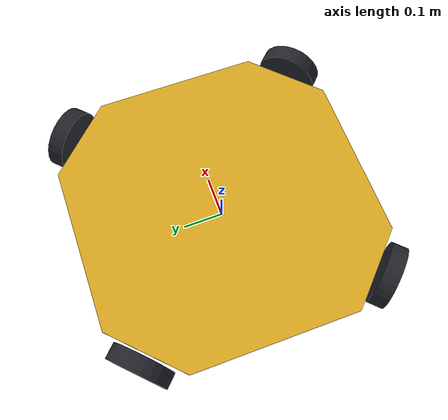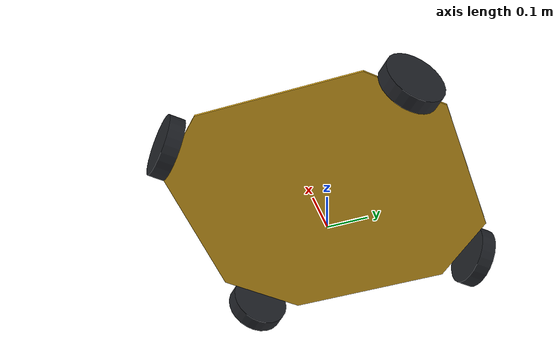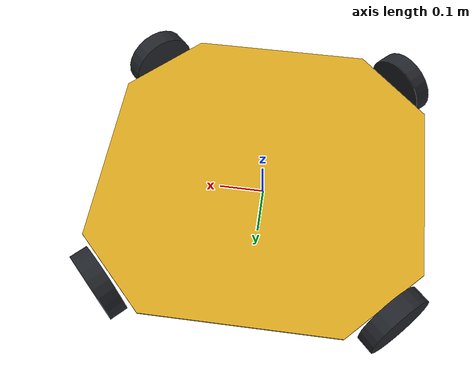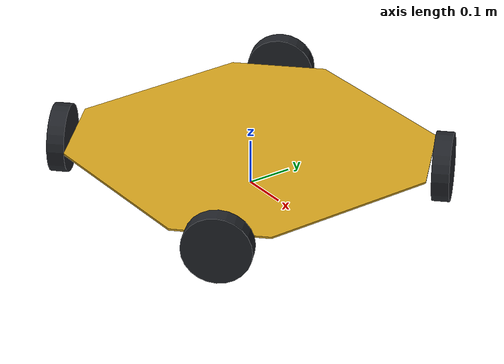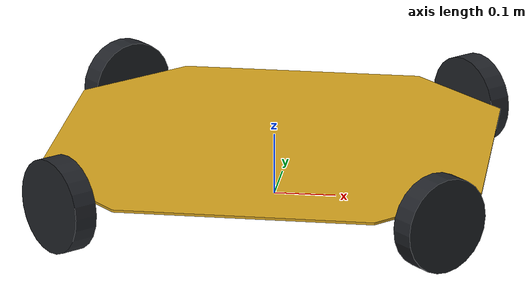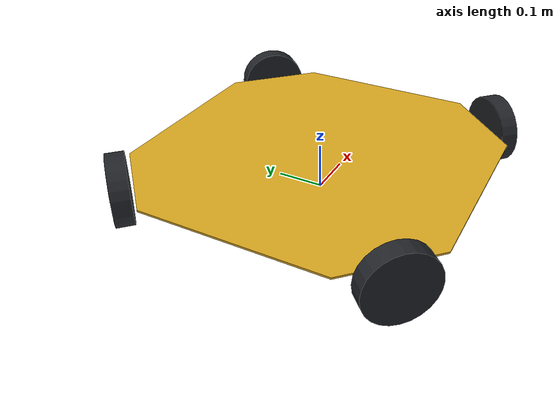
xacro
<?xml version="1.0"?>
<robot name="qianli" xmlns:xacro="http://www.ros.org/wiki/xacro">
  <xacro:arg name="control_mode" default="none"/>
  <xacro:arg name="controllers_file" default=""/>
  <xacro:arg name="simulation" default="false"/>
  <xacro:arg name="sensors" default="false"/>
  <xacro:property name="simulation" value="$(arg simulation)"/>
  <xacro:include filename="common.xacro"/>
  <xacro:include filename="base.xacro"/>
  <xacro:include filename="wheels.xacro"/>
  <xacro:include filename="ros2_control.xacro"/>
  <xacro:include filename="sim_inertials.xacro"/>
  <xacro:include filename="sensors.xacro"/>
  <xacro:qianli_base/>
  <xacro:qianli_wheels/>
  <xacro:if value="$(arg sensors)"><xacro:qianli_sensors/></xacro:if>
  <xacro:if value="${'$(arg control_mode)' != 'none'}">
    <xacro:qianli_control mode="$(arg control_mode)" controllers_file="$(arg controllers_file)"/>
  </xacro:if>
</robot>

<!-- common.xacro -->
<robot xmlns:xacro="http://www.ros.org/wiki/xacro">
  <xacro:property name="base_size" value="0.70"/>
  <xacro:property name="base_long_edge" value="0.40"/>
  <xacro:property name="base_cut" value="0.15"/>
  <xacro:property name="base_thickness" value="0.004"/>
  <!-- Height means plate MIDPLANE, not lower/upper face. -->
  <xacro:property name="base_height" value="0.09"/>
  <xacro:property name="wheel_radius" value="0.075"/>
  <xacro:property name="wheel_width" value="0.038"/>
  <xacro:property name="wheel_x" value="0.294"/>
  <xacro:property name="wheel_y" value="0.294"/>
  <xacro:property name="wheel_z" value="0.075"/>
  <xacro:property name="wheel_mount_angle" value="${pi/4}"/>

  <material name="qianli_plate"><color rgba="0.85 0.65 0.12 1"/></material>
  <material name="qianli_tire"><color rgba="0.13 0.14 0.16 1"/></material>
  <!-- No inertial or actuator parameters: mass/COM/polarity remain unknown. -->
</robot>

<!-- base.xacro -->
<robot xmlns:xacro="http://www.ros.org/wiki/xacro">
  <xacro:macro name="qianli_base" params="">
    <link name="base_footprint">
      <xacro:if value="${simulation}"><xacro:sim_frame_inertial/></xacro:if>
    </link>
    <link name="base_link">
      <xacro:if value="${simulation}"><xacro:sim_plate_inertial/></xacro:if>
      <visual name="octagonal_plate">
        <geometry><mesh filename="package://qianli_description/meshes/base/qianli_base.stl"/></geometry>
        <material name="qianli_plate"/>
      </visual>
      <!-- Closed convex prism: only 28 triangles, in metres. -->
      <collision name="octagonal_plate_collision">
        <geometry><mesh filename="package://qianli_description/meshes/base/qianli_base.stl"/></geometry>
      </collision>
    </link>
    <joint name="base_footprint_joint" type="fixed">
      <parent link="base_footprint"/>
      <child link="base_link"/>
      <origin xyz="0 0 ${base_height}" rpy="0 0 0"/>
    </joint>
  </xacro:macro>
</robot>

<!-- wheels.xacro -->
<robot xmlns:xacro="http://www.ros.org/wiki/xacro">
  <xacro:macro name="qianli_wheel" params="name x_sign y_sign yaw">
    <link name="${name}_wheel_link">
      <xacro:if value="${simulation}"><xacro:sim_wheel_inertial/></xacro:if>
      <!-- Cylinder axis and joint axis are both local +Z. -->
      <visual>
        <geometry><cylinder radius="${wheel_radius}" length="${wheel_width}"/></geometry>
        <material name="qianli_tire"/>
      </visual>
      <collision>
        <geometry><cylinder radius="${wheel_radius}" length="${wheel_width}"/></geometry>
      </collision>
    </link>
    <joint name="${name}_wheel_joint" type="continuous">
      <parent link="base_link"/>
      <child link="${name}_wheel_link"/>
      <!-- Rz(yaw)*Ry(pi/2) maps local Z to (cos(yaw),sin(yaw),0).
           Position is relative to base_link, not ground. -->
      <origin xyz="${x_sign*wheel_x} ${y_sign*wheel_y} ${wheel_z-base_height}"
              rpy="0 ${pi/2} ${yaw}"/>
      <axis xyz="0 0 1"/>
      <!-- Positive angle follows URDF's right-hand rule only.
           It does not specify motor/encoder polarity or omni X-drive kinematics. -->
    </joint>
  </xacro:macro>
  <xacro:macro name="qianli_wheels" params="">
    <xacro:qianli_wheel name="front_left" x_sign="1" y_sign="1" yaw="${wheel_mount_angle}"/>
    <xacro:qianli_wheel name="front_right" x_sign="1" y_sign="-1" yaw="${-wheel_mount_angle}"/>
    <xacro:qianli_wheel name="rear_left" x_sign="-1" y_sign="1" yaw="${pi-wheel_mount_angle}"/>
    <xacro:qianli_wheel name="rear_right" x_sign="-1" y_sign="-1" yaw="${wheel_mount_angle-pi}"/>
  </xacro:macro>
</robot>
